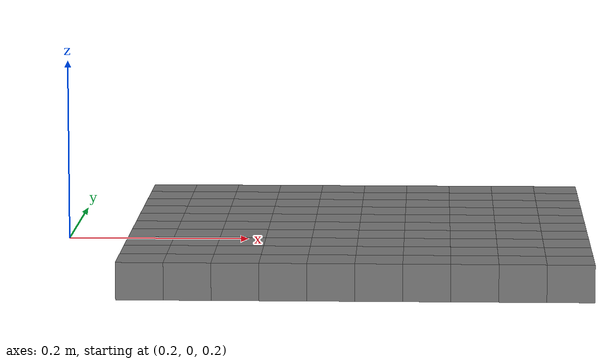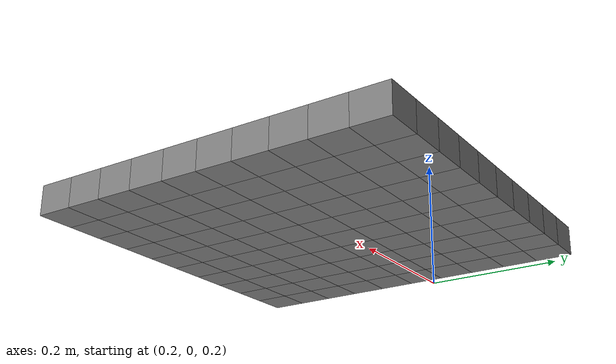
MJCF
<mujoco model="dirty_table">
  <worldbody>
    <body name="table" pos="0.3 -0.225 0.1">
      <inertial pos="0.25 0.2 0.1" mass="3.0" fullinertia="0.139 0.139 0.276 0.0 0.0 0.0"/>
      <geom name="table_0" type="box" size="0.025 0.025 0.02" pos="0.0 0.0 0.1" rgba="0.5 0.5 0.5 1.0"/>
      <geom name="table_1" type="box" size="0.025 0.025 0.02" pos="0.0 0.05 0.1" rgba="0.5 0.5 0.5 1.0"/>
      <geom name="table_2" type="box" size="0.025 0.025 0.02" pos="0.0 0.1 0.1" rgba="0.5 0.5 0.5 1.0"/>
      <geom name="table_3" type="box" size="0.025 0.025 0.02" pos="0.0 0.15 0.1" rgba="0.5 0.5 0.5 1.0"/>
      <geom name="table_4" type="box" size="0.025 0.025 0.02" pos="0.0 0.2 0.1" rgba="0.5 0.5 0.5 1.0"/>
      <geom name="table_5" type="box" size="0.025 0.025 0.02" pos="0.0 0.25 0.1" rgba="0.5 0.5 0.5 1.0"/>
      <geom name="table_6" type="box" size="0.025 0.025 0.02" pos="0.0 0.3 0.1" rgba="0.5 0.5 0.5 1.0"/>
      <geom name="table_7" type="box" size="0.025 0.025 0.02" pos="0.0 0.35 0.1" rgba="0.5 0.5 0.5 1.0"/>
      <geom name="table_8" type="box" size="0.025 0.025 0.02" pos="0.0 0.4 0.1" rgba="0.5 0.5 0.5 1.0"/>
      <geom name="table_9" type="box" size="0.025 0.025 0.02" pos="0.0 0.45 0.1" rgba="0.5 0.5 0.5 1.0"/>
      <geom name="table_10" type="box" size="0.025 0.025 0.02" pos="0.05 0.0 0.1" rgba="0.5 0.5 0.5 1.0"/>
      <geom name="table_11" type="box" size="0.025 0.025 0.02" pos="0.05 0.05 0.1" rgba="0.5 0.5 0.5 1.0"/>
      <geom name="table_12" type="box" size="0.025 0.025 0.02" pos="0.05 0.1 0.1" rgba="0.5 0.5 0.5 1.0"/>
      <geom name="table_13" type="box" size="0.025 0.025 0.02" pos="0.05 0.15 0.1" rgba="0.5 0.5 0.5 1.0"/>
      <geom name="table_14" type="box" size="0.025 0.025 0.02" pos="0.05 0.2 0.1" rgba="0.5 0.5 0.5 1.0"/>
      <geom name="table_15" type="box" size="0.025 0.025 0.02" pos="0.05 0.25 0.1" rgba="0.5 0.5 0.5 1.0"/>
      <geom name="table_16" type="box" size="0.025 0.025 0.02" pos="0.05 0.3 0.1" rgba="0.5 0.5 0.5 1.0"/>
      <geom name="table_17" type="box" size="0.025 0.025 0.02" pos="0.05 0.35 0.1" rgba="0.5 0.5 0.5 1.0"/>
      <geom name="table_18" type="box" size="0.025 0.025 0.02" pos="0.05 0.4 0.1" rgba="0.5 0.5 0.5 1.0"/>
      <geom name="table_19" type="box" size="0.025 0.025 0.02" pos="0.05 0.45 0.1" rgba="0.5 0.5 0.5 1.0"/>
      <geom name="table_20" type="box" size="0.025 0.025 0.02" pos="0.1 0.0 0.1" rgba="0.5 0.5 0.5 1.0"/>
      <geom name="table_21" type="box" size="0.025 0.025 0.02" pos="0.1 0.05 0.1" rgba="0.5 0.5 0.5 1.0"/>
      <geom name="table_22" type="box" size="0.025 0.025 0.02" pos="0.1 0.1 0.1" rgba="0.5 0.5 0.5 1.0"/>
      <geom name="table_23" type="box" size="0.025 0.025 0.02" pos="0.1 0.15 0.1" rgba="0.5 0.5 0.5 1.0"/>
      <geom name="table_24" type="box" size="0.025 0.025 0.02" pos="0.1 0.2 0.1" rgba="0.5 0.5 0.5 1.0"/>
      <geom name="table_25" type="box" size="0.025 0.025 0.02" pos="0.1 0.25 0.1" rgba="0.5 0.5 0.5 1.0"/>
      <geom name="table_26" type="box" size="0.025 0.025 0.02" pos="0.1 0.3 0.1" rgba="0.5 0.5 0.5 1.0"/>
      <geom name="table_27" type="box" size="0.025 0.025 0.02" pos="0.1 0.35 0.1" rgba="0.5 0.5 0.5 1.0"/>
      <geom name="table_28" type="box" size="0.025 0.025 0.02" pos="0.1 0.4 0.1" rgba="0.5 0.5 0.5 1.0"/>
      <geom name="table_29" type="box" size="0.025 0.025 0.02" pos="0.1 0.45 0.1" rgba="0.5 0.5 0.5 1.0"/>
      <geom name="table_30" type="box" size="0.025 0.025 0.02" pos="0.15 0.0 0.1" rgba="0.5 0.5 0.5 1.0"/>
      <geom name="table_31" type="box" size="0.025 0.025 0.02" pos="0.15 0.05 0.1" rgba="0.5 0.5 0.5 1.0"/>
      <geom name="table_32" type="box" size="0.025 0.025 0.02" pos="0.15 0.1 0.1" rgba="0.5 0.5 0.5 1.0"/>
      <geom name="table_33" type="box" size="0.025 0.025 0.02" pos="0.15 0.15 0.1" rgba="0.5 0.5 0.5 1.0"/>
      <geom name="table_34" type="box" size="0.025 0.025 0.02" pos="0.15 0.2 0.1" rgba="0.5 0.5 0.5 1.0"/>
      <geom name="table_35" type="box" size="0.025 0.025 0.02" pos="0.15 0.25 0.1" rgba="0.5 0.5 0.5 1.0"/>
      <geom name="table_36" type="box" size="0.025 0.025 0.02" pos="0.15 0.3 0.1" rgba="0.5 0.5 0.5 1.0"/>
      <geom name="table_37" type="box" size="0.025 0.025 0.02" pos="0.15 0.35 0.1" rgba="0.5 0.5 0.5 1.0"/>
      <geom name="table_38" type="box" size="0.025 0.025 0.02" pos="0.15 0.4 0.1" rgba="0.5 0.5 0.5 1.0"/>
      <geom name="table_39" type="box" size="0.025 0.025 0.02" pos="0.15 0.45 0.1" rgba="0.5 0.5 0.5 1.0"/>
      <geom name="table_40" type="box" size="0.025 0.025 0.02" pos="0.2 0.0 0.1" rgba="0.5 0.5 0.5 1.0"/>
      <geom name="table_41" type="box" size="0.025 0.025 0.02" pos="0.2 0.05 0.1" rgba="0.5 0.5 0.5 1.0"/>
      <geom name="table_42" type="box" size="0.025 0.025 0.02" pos="0.2 0.1 0.1" rgba="0.5 0.5 0.5 1.0"/>
      <geom name="table_43" type="box" size="0.025 0.025 0.02" pos="0.2 0.15 0.1" rgba="0.5 0.5 0.5 1.0"/>
      <geom name="table_44" type="box" size="0.025 0.025 0.02" pos="0.2 0.2 0.1" rgba="0.5 0.5 0.5 1.0"/>
      <geom name="table_45" type="box" size="0.025 0.025 0.02" pos="0.2 0.25 0.1" rgba="0.5 0.5 0.5 1.0"/>
      <geom name="table_46" type="box" size="0.025 0.025 0.02" pos="0.2 0.3 0.1" rgba="0.5 0.5 0.5 1.0"/>
      <geom name="table_47" type="box" size="0.025 0.025 0.02" pos="0.2 0.35 0.1" rgba="0.5 0.5 0.5 1.0"/>
      <geom name="table_48" type="box" size="0.025 0.025 0.02" pos="0.2 0.4 0.1" rgba="0.5 0.5 0.5 1.0"/>
      <geom name="table_49" type="box" size="0.025 0.025 0.02" pos="0.2 0.45 0.1" rgba="0.5 0.5 0.5 1.0"/>
      <geom name="table_50" type="box" size="0.025 0.025 0.02" pos="0.25 0.0 0.1" rgba="0.5 0.5 0.5 1.0"/>
      <geom name="table_51" type="box" size="0.025 0.025 0.02" pos="0.25 0.05 0.1" rgba="0.5 0.5 0.5 1.0"/>
      <geom name="table_52" type="box" size="0.025 0.025 0.02" pos="0.25 0.1 0.1" rgba="0.5 0.5 0.5 1.0"/>
      <geom name="table_53" type="box" size="0.025 0.025 0.02" pos="0.25 0.15 0.1" rgba="0.5 0.5 0.5 1.0"/>
      <geom name="table_54" type="box" size="0.025 0.025 0.02" pos="0.25 0.2 0.1" rgba="0.5 0.5 0.5 1.0"/>
      <geom name="table_55" type="box" size="0.025 0.025 0.02" pos="0.25 0.25 0.1" rgba="0.5 0.5 0.5 1.0"/>
      <geom name="table_56" type="box" size="0.025 0.025 0.02" pos="0.25 0.3 0.1" rgba="0.5 0.5 0.5 1.0"/>
      <geom name="table_57" type="box" size="0.025 0.025 0.02" pos="0.25 0.35 0.1" rgba="0.5 0.5 0.5 1.0"/>
      <geom name="table_58" type="box" size="0.025 0.025 0.02" pos="0.25 0.4 0.1" rgba="0.5 0.5 0.5 1.0"/>
      <geom name="table_59" type="box" size="0.025 0.025 0.02" pos="0.25 0.45 0.1" rgba="0.5 0.5 0.5 1.0"/>
      <geom name="table_60" type="box" size="0.025 0.025 0.02" pos="0.3 0.0 0.1" rgba="0.5 0.5 0.5 1.0"/>
      <geom name="table_61" type="box" size="0.025 0.025 0.02" pos="0.3 0.05 0.1" rgba="0.5 0.5 0.5 1.0"/>
      <geom name="table_62" type="box" size="0.025 0.025 0.02" pos="0.3 0.1 0.1" rgba="0.5 0.5 0.5 1.0"/>
      <geom name="table_63" type="box" size="0.025 0.025 0.02" pos="0.3 0.15 0.1" rgba="0.5 0.5 0.5 1.0"/>
      <geom name="table_64" type="box" size="0.025 0.025 0.02" pos="0.3 0.2 0.1" rgba="0.5 0.5 0.5 1.0"/>
      <geom name="table_65" type="box" size="0.025 0.025 0.02" pos="0.3 0.25 0.1" rgba="0.5 0.5 0.5 1.0"/>
      <geom name="table_66" type="box" size="0.025 0.025 0.02" pos="0.3 0.3 0.1" rgba="0.5 0.5 0.5 1.0"/>
      <geom name="table_67" type="box" size="0.025 0.025 0.02" pos="0.3 0.35 0.1" rgba="0.5 0.5 0.5 1.0"/>
      <geom name="table_68" type="box" size="0.025 0.025 0.02" pos="0.3 0.4 0.1" rgba="0.5 0.5 0.5 1.0"/>
      <geom name="table_69" type="box" size="0.025 0.025 0.02" pos="0.3 0.45 0.1" rgba="0.5 0.5 0.5 1.0"/>
      <geom name="table_70" type="box" size="0.025 0.025 0.02" pos="0.35 0.0 0.1" rgba="0.5 0.5 0.5 1.0"/>
      <geom name="table_71" type="box" size="0.025 0.025 0.02" pos="0.35 0.05 0.1" rgba="0.5 0.5 0.5 1.0"/>
      <geom name="table_72" type="box" size="0.025 0.025 0.02" pos="0.35 0.1 0.1" rgba="0.5 0.5 0.5 1.0"/>
      <geom name="table_73" type="box" size="0.025 0.025 0.02" pos="0.35 0.15 0.1" rgba="0.5 0.5 0.5 1.0"/>
      <geom name="table_74" type="box" size="0.025 0.025 0.02" pos="0.35 0.2 0.1" rgba="0.5 0.5 0.5 1.0"/>
      <geom name="table_75" type="box" size="0.025 0.025 0.02" pos="0.35 0.25 0.1" rgba="0.5 0.5 0.5 1.0"/>
      <geom name="table_76" type="box" size="0.025 0.025 0.02" pos="0.35 0.3 0.1" rgba="0.5 0.5 0.5 1.0"/>
      <geom name="table_77" type="box" size="0.025 0.025 0.02" pos="0.35 0.35 0.1" rgba="0.5 0.5 0.5 1.0"/>
      <geom name="table_78" type="box" size="0.025 0.025 0.02" pos="0.35 0.4 0.1" rgba="0.5 0.5 0.5 1.0"/>
      <geom name="table_79" type="box" size="0.025 0.025 0.02" pos="0.35 0.45 0.1" rgba="0.5 0.5 0.5 1.0"/>
      <geom name="table_80" type="box" size="0.025 0.025 0.02" pos="0.4 0.0 0.1" rgba="0.5 0.5 0.5 1.0"/>
      <geom name="table_81" type="box" size="0.025 0.025 0.02" pos="0.4 0.05 0.1" rgba="0.5 0.5 0.5 1.0"/>
      <geom name="table_82" type="box" size="0.025 0.025 0.02" pos="0.4 0.1 0.1" rgba="0.5 0.5 0.5 1.0"/>
      <geom name="table_83" type="box" size="0.025 0.025 0.02" pos="0.4 0.15 0.1" rgba="0.5 0.5 0.5 1.0"/>
      <geom name="table_84" type="box" size="0.025 0.025 0.02" pos="0.4 0.2 0.1" rgba="0.5 0.5 0.5 1.0"/>
      <geom name="table_85" type="box" size="0.025 0.025 0.02" pos="0.4 0.25 0.1" rgba="0.5 0.5 0.5 1.0"/>
      <geom name="table_86" type="box" size="0.025 0.025 0.02" pos="0.4 0.3 0.1" rgba="0.5 0.5 0.5 1.0"/>
      <geom name="table_87" type="box" size="0.025 0.025 0.02" pos="0.4 0.35 0.1" rgba="0.5 0.5 0.5 1.0"/>
      <geom name="table_88" type="box" size="0.025 0.025 0.02" pos="0.4 0.4 0.1" rgba="0.5 0.5 0.5 1.0"/>
      <geom name="table_89" type="box" size="0.025 0.025 0.02" pos="0.4 0.45 0.1" rgba="0.5 0.5 0.5 1.0"/>
      <geom name="table_90" type="box" size="0.025 0.025 0.02" pos="0.45 0.0 0.1" rgba="0.5 0.5 0.5 1.0"/>
      <geom name="table_91" type="box" size="0.025 0.025 0.02" pos="0.45 0.05 0.1" rgba="0.5 0.5 0.5 1.0"/>
      <geom name="table_92" type="box" size="0.025 0.025 0.02" pos="0.45 0.1 0.1" rgba="0.5 0.5 0.5 1.0"/>
      <geom name="table_93" type="box" size="0.025 0.025 0.02" pos="0.45 0.15 0.1" rgba="0.5 0.5 0.5 1.0"/>
      <geom name="table_94" type="box" size="0.025 0.025 0.02" pos="0.45 0.2 0.1" rgba="0.5 0.5 0.5 1.0"/>
      <geom name="table_95" type="box" size="0.025 0.025 0.02" pos="0.45 0.25 0.1" rgba="0.5 0.5 0.5 1.0"/>
      <geom name="table_96" type="box" size="0.025 0.025 0.02" pos="0.45 0.3 0.1" rgba="0.5 0.5 0.5 1.0"/>
      <geom name="table_97" type="box" size="0.025 0.025 0.02" pos="0.45 0.35 0.1" rgba="0.5 0.5 0.5 1.0"/>
      <geom name="table_98" type="box" size="0.025 0.025 0.02" pos="0.45 0.4 0.1" rgba="0.5 0.5 0.5 1.0"/>
      <geom name="table_99" type="box" size="0.025 0.025 0.02" pos="0.45 0.45 0.1" rgba="0.5 0.5 0.5 1.0"/>
  </body>
  </worldbody>
</mujoco>
